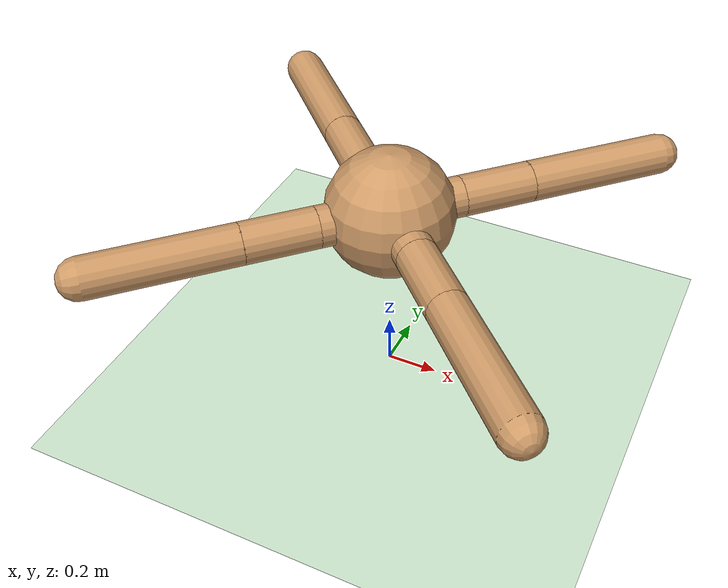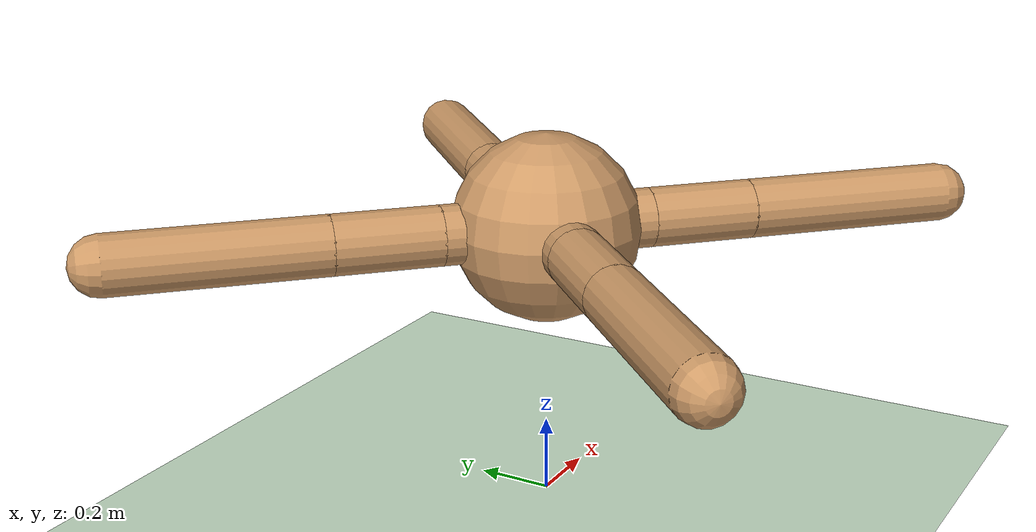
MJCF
<mujoco model="ant">
  <compiler angle="degree" coordinate="local" inertiafromgeom="true"/>
  <option integrator="RK4" timestep="0.02"/>
  <custom>
    <numeric data="0.0 0.0 0.55 1.0 0.0 0.0 0.0 0.0 1.0 0.0 -1.0 0.0 -1.0 0.0 1.0" name="init_qpos"/>
  </custom>
  <default>
    <joint armature="1" damping="1" limited="true"/>
    <geom conaffinity="0" condim="3" density="5.0" friction="1 0.5 0.5" margin="0.01" rgba="0.8 0.6 0.4 1"/>
  </default>
  <asset>
    <texture builtin="gradient" height="100" rgb1="1 1 1" rgb2="0 0 0" type="skybox" width="100"/>
    <texture builtin="flat" height="1278" mark="cross" markrgb="1 1 1" name="texgeom" random="0.01" rgb1="0.8 0.6 0.4" rgb2="0.8 0.6 0.4" type="cube" width="127"/>
    <texture builtin="checker" height="100" name="texplane" rgb1="0.8 0.8 0.8" rgb2="0.8 0.8 0.8" type="2d" width="100"/>
    <material name="MatPlane" reflectance="0.5" shininess="1" specular="1" texrepeat="60 60" texture="texplane"/>
    <material name="geom" texture="texgeom" texuniform="true"/>
  </asset>
  <worldbody>
    <light cutoff="100" diffuse="1 1 1" dir="-0 0 -1.3" directional="true" exponent="1" pos="0 0 1.3" specular=".1 .1 .1"/>
    <geom conaffinity="1" condim="3" material="MatPlane" name="floor" pos="0 0 0" rgba="0.8 0.9 0.8 1" size="40 40 40" type="plane"/>
    <!-- Agent body -->
    <body name="torso" pos="0 0 0.75">
      <camera name="track" mode="trackcom" pos="0 -3 0.3" xyaxes="1 0 0 0 0 1"/>
      <geom name="torso_geom" pos="0 0 0" size="0.25" type="sphere"/>
      <joint armature="0" damping="0" limited="false" margin="0.01" name="root" pos="0 0 0" type="free"/>
      <body name="front_left_leg" pos="0 0 0">
        <geom fromto="0.0 0.0 0.0 0.2 0.2 0.0" name="aux_1_geom" size="0.08" type="capsule"/>
        <body name="aux_1" pos="0.2 0.2 0">
          <joint axis="0 0 1" name="hip_1" pos="0.0 0.0 0.0" range="-30 30" type="hinge"/>
          <geom fromto="0.0 0.0 0.0 0.2 0.2 0.0" name="left_leg_geom" size="0.08" type="capsule"/>
          <body pos="0.2 0.2 0">
            <joint axis="-1 1 0" name="ankle_1" pos="0.0 0.0 0.0" range="30 70" type="hinge"/>
            <geom fromto="0.0 0.0 0.0 0.4 0.4 0.0" name="left_ankle_geom" size="0.08" type="capsule"/>
          </body>
        </body>
      </body>
      <body name="front_right_leg" pos="0 0 0">
        <geom fromto="0.0 0.0 0.0 -0.2 0.2 0.0" name="aux_2_geom" size="0.08" type="capsule"/>
        <body name="aux_2" pos="-0.2 0.2 0">
          <joint axis="0 0 1" name="hip_2" pos="0.0 0.0 0.0" range="-30 30" type="hinge"/>
          <geom fromto="0.0 0.0 0.0 -0.2 0.2 0.0" name="right_leg_geom" size="0.08" type="capsule"/>
          <body pos="-0.2 0.2 0">
            <joint axis="1 1 0" name="ankle_2" pos="0.0 0.0 0.0" range="-70 -30" type="hinge"/>
            <geom fromto="0.0 0.0 0.0 -0.4 0.4 0.0" name="right_ankle_geom" size="0.08" type="capsule"/>
          </body>
        </body>
      </body>
      <body name="back_leg" pos="0 0 0">
        <geom fromto="0.0 0.0 0.0 -0.2 -0.2 0.0" name="aux_3_geom" size="0.08" type="capsule"/>
        <body name="aux_3" pos="-0.2 -0.2 0">
          <joint axis="0 0 1" name="hip_3" pos="0.0 0.0 0.0" range="-30 30" type="hinge"/>
          <geom fromto="0.0 0.0 0.0 -0.2 -0.2 0.0" name="back_leg_geom" size="0.08" type="capsule"/>
          <body pos="-0.2 -0.2 0">
            <joint axis="-1 1 0" name="ankle_3" pos="0.0 0.0 0.0" range="-70 -30" type="hinge"/>
            <geom fromto="0.0 0.0 0.0 -0.4 -0.4 0.0" name="third_ankle_geom" size="0.08" type="capsule"/>
          </body>
        </body>
      </body>
      <body name="right_back_leg" pos="0 0 0">
        <geom fromto="0.0 0.0 0.0 0.2 -0.2 0.0" name="aux_4_geom" size="0.08" type="capsule"/>
        <body name="aux_4" pos="0.2 -0.2 0">
          <joint axis="0 0 1" name="hip_4" pos="0.0 0.0 0.0" range="-30 30" type="hinge"/>
          <geom fromto="0.0 0.0 0.0 0.2 -0.2 0.0" name="rightback_leg_geom" size="0.08" type="capsule"/>
          <body pos="0.2 -0.2 0">
            <joint axis="1 1 0" name="ankle_4" pos="0.0 0.0 0.0" range="30 70" type="hinge"/>
            <geom fromto="0.0 0.0 0.0 0.4 -0.4 0.0" name="fourth_ankle_geom" size="0.08" type="capsule"/>
          </body>
        </body>
      </body>
    </body>
    <!-- Sub-Goal body (blue) -->
    <body name="torso_goal_0" pos="0 0 0.75">
      <camera name="track_goal_0" mode="trackcom" pos="0 -3 0.3" xyaxes="1 0 0 0 0 1"/>
      <geom name="torso_geom_goal_0" pos="0 0 0" size="0.25" type="sphere" rgba="0 0 1 1"/>
      <joint armature="0" damping="0" limited="false" margin="0.01" name="root_goal_0" pos="0 0 0" type="free"/>
      <body name="front_left_leg_goal_0" pos="0 0 0">
        <geom fromto="0.0 0.0 0.0 0.2 0.2 0.0" name="aux_1_geom_goal_0" size="0.08" type="capsule" rgba="0 0 1 1"/>
        <body name="aux_1_goal_0" pos="0.2 0.2 0">
          <joint axis="0 0 1" name="hip_1_goal_0" pos="0.0 0.0 0.0" range="-30 30" type="hinge"/>
          <geom fromto="0.0 0.0 0.0 0.2 0.2 0.0" name="left_leg_geom_goal_0" size="0.08" type="capsule" rgba="0 0 1 1"/>
          <body pos="0.2 0.2 0">
            <joint axis="-1 1 0" name="ankle_1_goal_0" pos="0.0 0.0 0.0" range="30 70" type="hinge"/>
            <geom fromto="0.0 0.0 0.0 0.4 0.4 0.0" name="left_ankle_geom_goal_0" size="0.08" type="capsule" rgba="0 0 1 1"/>
          </body>
        </body>
      </body>
      <body name="front_right_leg_goal_0" pos="0 0 0">
        <geom fromto="0.0 0.0 0.0 -0.2 0.2 0.0" name="aux_2_geom_goal_0" size="0.08" type="capsule" rgba="0 0 1 1"/>
        <body name="aux_2_goal_0" pos="-0.2 0.2 0">
          <joint axis="0 0 1" name="hip_2_goal_0" pos="0.0 0.0 0.0" range="-30 30" type="hinge"/>
          <geom fromto="0.0 0.0 0.0 -0.2 0.2 0.0" name="right_leg_geom_goal_0" size="0.08" type="capsule" rgba="0 0 1 1"/>
          <body pos="-0.2 0.2 0">
            <joint axis="1 1 0" name="ankle_2_goal_0" pos="0.0 0.0 0.0" range="-70 -30" type="hinge"/>
            <geom fromto="0.0 0.0 0.0 -0.4 0.4 0.0" name="right_ankle_geom_goal_0" size="0.08" type="capsule" rgba="0 0 1 1"/>
          </body>
        </body>
      </body>
      <body name="back_leg_goal_0" pos="0 0 0">
        <geom fromto="0.0 0.0 0.0 -0.2 -0.2 0.0" name="aux_3_geom_goal_0" size="0.08" type="capsule" rgba="0 0 1 1"/>
        <body name="aux_3_goal_0" pos="-0.2 -0.2 0">
          <joint axis="0 0 1" name="hip_3_goal_0" pos="0.0 0.0 0.0" range="-30 30" type="hinge"/>
          <geom fromto="0.0 0.0 0.0 -0.2 -0.2 0.0" name="back_leg_geom_goal_0" size="0.08" type="capsule" rgba="0 0 1 1"/>
          <body pos="-0.2 -0.2 0">
            <joint axis="-1 1 0" name="ankle_3_goal_0" pos="0.0 0.0 0.0" range="-70 -30" type="hinge"/>
            <geom fromto="0.0 0.0 0.0 -0.4 -0.4 0.0" name="third_ankle_geom_goal_0" size="0.08" type="capsule" rgba="0 0 1 1"/>
          </body>
        </body>
      </body>
      <body name="right_back_leg_goal_0" pos="0 0 0">
        <geom fromto="0.0 0.0 0.0 0.2 -0.2 0.0" name="aux_4_geom_goal_0" size="0.08" type="capsule" rgba="0 0 1 1"/>
        <body name="aux_4_goal_0" pos="0.2 -0.2 0">
          <joint axis="0 0 1" name="hip_4_goal_0" pos="0.0 0.0 0.0" range="-30 30" type="hinge"/>
          <geom fromto="0.0 0.0 0.0 0.2 -0.2 0.0" name="rightback_leg_geom_goal_0" size="0.08" type="capsule" rgba="0 0 1 1"/>
          <body pos="0.2 -0.2 0">
            <joint axis="1 1 0" name="ankle_4_goal_0" pos="0.0 0.0 0.0" range="30 70" type="hinge"/>
            <geom fromto="0.0 0.0 0.0 0.4 -0.4 0.0" name="fourth_ankle_geom_goal_0" size="0.08" type="capsule" rgba="0 0 1 1"/>
          </body>
        </body>
      </body>
    </body>
    <!-- Sub-Goal body (red) -->
    <body name="torso_goal_1" pos="0 0 0.75">
      <camera name="track_goal_1" mode="trackcom" pos="0 -3 0.3" xyaxes="1 0 0 0 0 1"/>
      <geom name="torso_geom_goal_1" pos="0 0 0" size="0.25" type="sphere" rgba="1 0 0 1"/>
      <joint armature="0" damping="0" limited="false" margin="0.01" name="root_goal_1" pos="0 0 0" type="free"/>
      <body name="front_left_leg_goal_1" pos="0 0 0">
        <geom fromto="0.0 0.0 0.0 0.2 0.2 0.0" name="aux_1_geom_goal_1" size="0.08" type="capsule" rgba="1 0 0 1"/>
        <body name="aux_1_goal_1" pos="0.2 0.2 0">
          <joint axis="0 0 1" name="hip_1_goal_1" pos="0.0 0.0 0.0" range="-30 30" type="hinge"/>
          <geom fromto="0.0 0.0 0.0 0.2 0.2 0.0" name="left_leg_geom_goal_1" size="0.08" type="capsule" rgba="1 0 0 1"/>
          <body pos="0.2 0.2 0">
            <joint axis="-1 1 0" name="ankle_1_goal_1" pos="0.0 0.0 0.0" range="30 70" type="hinge"/>
            <geom fromto="0.0 0.0 0.0 0.4 0.4 0.0" name="left_ankle_geom_goal_1" size="0.08" type="capsule" rgba="1 0 0 1"/>
          </body>
        </body>
      </body>
      <body name="front_right_leg_goal_1" pos="0 0 0">
        <geom fromto="0.0 0.0 0.0 -0.2 0.2 0.0" name="aux_2_geom_goal_1" size="0.08" type="capsule" rgba="1 0 0 1"/>
        <body name="aux_2_goal_1" pos="-0.2 0.2 0">
          <joint axis="0 0 1" name="hip_2_goal_1" pos="0.0 0.0 0.0" range="-30 30" type="hinge"/>
          <geom fromto="0.0 0.0 0.0 -0.2 0.2 0.0" name="right_leg_geom_goal_1" size="0.08" type="capsule" rgba="1 0 0 1"/>
          <body pos="-0.2 0.2 0">
            <joint axis="1 1 0" name="ankle_2_goal_1" pos="0.0 0.0 0.0" range="-70 -30" type="hinge"/>
            <geom fromto="0.0 0.0 0.0 -0.4 0.4 0.0" name="right_ankle_geom_goal_1" size="0.08" type="capsule" rgba="1 0 0 1"/>
          </body>
        </body>
      </body>
      <body name="back_leg_goal_1" pos="0 0 0">
        <geom fromto="0.0 0.0 0.0 -0.2 -0.2 0.0" name="aux_3_geom_goal_1" size="0.08" type="capsule" rgba="1 0 0 1"/>
        <body name="aux_3_goal_1" pos="-0.2 -0.2 0">
          <joint axis="0 0 1" name="hip_3_goal_1" pos="0.0 0.0 0.0" range="-30 30" type="hinge"/>
          <geom fromto="0.0 0.0 0.0 -0.2 -0.2 0.0" name="back_leg_geom_goal_1" size="0.08" type="capsule" rgba="1 0 0 1"/>
          <body pos="-0.2 -0.2 0">
            <joint axis="-1 1 0" name="ankle_3_goal_1" pos="0.0 0.0 0.0" range="-70 -30" type="hinge"/>
            <geom fromto="0.0 0.0 0.0 -0.4 -0.4 0.0" name="third_ankle_geom_goal_1" size="0.08" type="capsule" rgba="1 0 0 1"/>
          </body>
        </body>
      </body>
      <body name="right_back_leg_goal_1" pos="0 0 0">
        <geom fromto="0.0 0.0 0.0 0.2 -0.2 0.0" name="aux_4_geom_goal_1" size="0.08" type="capsule" rgba="1 0 0 1"/>
        <body name="aux_4_goal_1" pos="0.2 -0.2 0">
          <joint axis="0 0 1" name="hip_4_goal_1" pos="0.0 0.0 0.0" range="-30 30" type="hinge"/>
          <geom fromto="0.0 0.0 0.0 0.2 -0.2 0.0" name="rightback_leg_geom_goal_1" size="0.08" type="capsule" rgba="1 0 0 1"/>
          <body pos="0.2 -0.2 0">
            <joint axis="1 1 0" name="ankle_4_goal_1" pos="0.0 0.0 0.0" range="30 70" type="hinge"/>
            <geom fromto="0.0 0.0 0.0 0.4 -0.4 0.0" name="fourth_ankle_geom_goal_1" size="0.08" type="capsule" rgba="1 0 0 1"/>
          </body>
        </body>
      </body>
    </body>
  </worldbody>
  <actuator>
    <motor joint="hip_4" ctrlrange="-30.0 30.0" ctrllimited="true" />
    <motor joint="ankle_4" ctrlrange="-30.0 30.0" ctrllimited="true" />
    <motor joint="hip_1" ctrlrange="-30.0 30.0" ctrllimited="true" />
    <motor joint="ankle_1" ctrlrange="-30.0 30.0" ctrllimited="true" />
    <motor joint="hip_2" ctrlrange="-30.0 30.0" ctrllimited="true" />
    <motor joint="ankle_2" ctrlrange="-30.0 30.0" ctrllimited="true" />
    <motor joint="hip_3" ctrlrange="-30.0 30.0" ctrllimited="true" />
    <motor joint="ankle_3" ctrlrange="-30.0 30.0" ctrllimited="true" />
  </actuator>
</mujoco>
